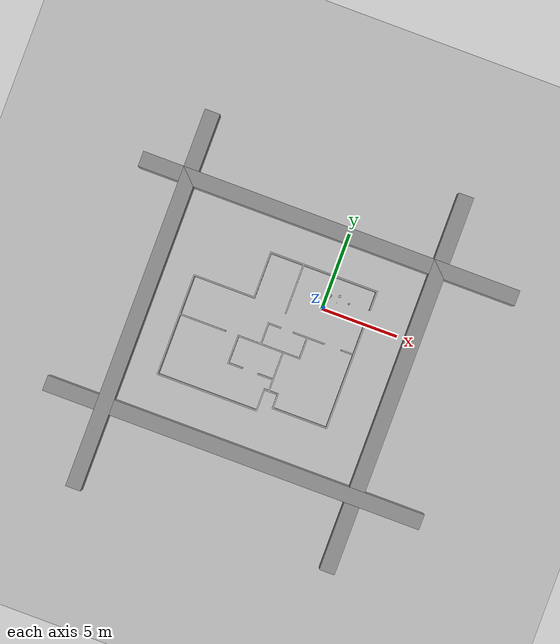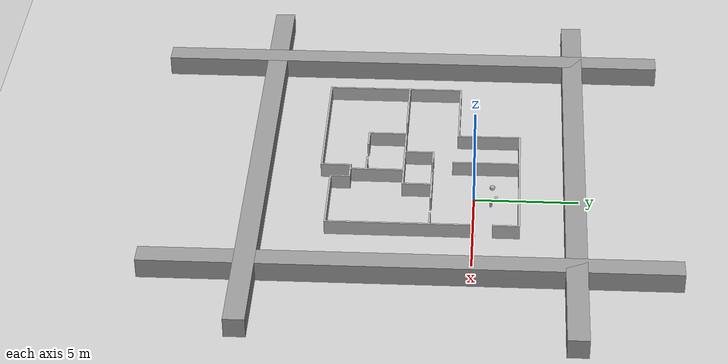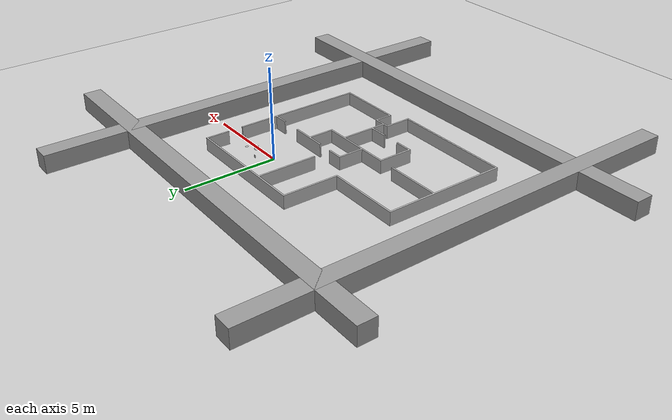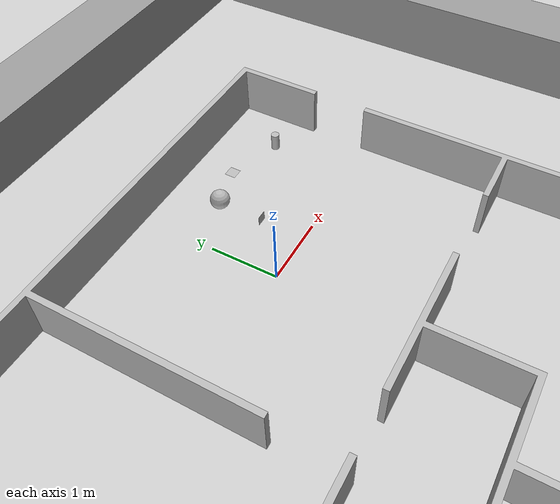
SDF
<sdf version="1.6">
 <world name="default">
  <light name="sun" type="directional">
   <pose>0 0 10 0 -0 0</pose>
   <diffuse>0.8 0.8 0.8 1</diffuse>
   <specular>0.2 0.2 0.2 1</specular>
   <attenuation>
    <range>1000</range>
    <constant>0.9</constant>
    <linear>0.01</linear>
    <quadratic>0.001</quadratic>
   </attenuation>
   <direction>-0.5 0.1 -0.9</direction>
  </light>
  <model name="ground_plane">
   <static>1</static>
   <link name="link">
    <collision name="collision">
     <geometry><plane><normal>0 0 1</normal><size>100 100</size></plane></geometry>
     <surface><friction><ode><mu>100</mu><mu2>50</mu2></ode></friction></surface>
    </collision>
    <visual name="visual">
     <cast_shadows>0</cast_shadows>
     <geometry><plane><normal>0 0 1</normal><size>100 100</size></plane></geometry>
     <material>
      <script><uri>file://media/materials/scripts/gazebo.material</uri><name>Gazebo/Grey</name></script>
     </material>
    </visual>
    <velocity_decay><linear>0</linear><angular>0</angular></velocity_decay>
   </link>
  </model>
  <physics name="default_physics" default="0" type="ode">
   <max_step_size>0.001</max_step_size>
   <real_time_factor>1</real_time_factor>
   <real_time_update_rate>1000</real_time_update_rate>
  </physics>
  <scene><ambient>0.4 0.4 0.4 1</ambient><background>0.7 0.7 0.7 1</background><shadows>1</shadows></scene>
  <spherical_coordinates>
   <surface_model>EARTH_WGS84</surface_model>
   <latitude_deg>0</latitude_deg>
   <longitude_deg>0</longitude_deg>
   <elevation>0</elevation>
   <heading_deg>0</heading_deg>
  </spherical_coordinates>
  <model name="iceira302">
   <link name="iceira302">
    <inertial>
     <pose>-0.51712 -1.0217 0.365 0 -0 0</pose>
     <mass>4047.1</mass>
     <inertia>
      <ixx>39193.3</ixx>
      <ixy>6157.57</ixy>
      <ixz>-3.10115e-12</ixz>
      <iyy>49928.6</iyy>
      <iyz>3.4948e-12</iyz>
      <izz>88762.4</izz>
     </inertia>
    </inertial>
    <collision name="iceira302_collision">
     <geometry><mesh><scale>1 1 1</scale><uri>model://meshes/iceira302.STL</uri></mesh></geometry>
    </collision>
    <visual name="iceira302_visual">
     <geometry><mesh><scale>1 1 1</scale><uri>model://meshes/iceira302.STL</uri></mesh></geometry>
    </visual>
    <velocity_decay><linear>0</linear><angular>0</angular></velocity_decay>
   </link>
   <pose>-2 -2 -3e-06 -1e-06 1e-06 0</pose>
   <static>0</static>
  </model>
  <gravity>0 0 -9.8</gravity>
  <magnetic_field>6e-06 2.3e-05 -4.2e-05</magnetic_field>
  <atmosphere type="adiabatic"/>
  <model name="unit_box_0">
   <static>1</static>
   <pose>-1.35814 4.79357 0.499995 1e-05 -0 0</pose>
   <link name="link">
    <inertial>
     <mass>1</mass>
     <inertia>
      <ixx>0.166667</ixx>
      <ixy>0</ixy>
      <ixz>0</ixz>
      <iyy>0.166667</iyy>
      <iyz>0</iyz>
      <izz>0.166667</izz>
     </inertia>
    </inertial>
    <collision name="collision"><geometry><box><size>25 1 1</size></box></geometry></collision>
    <visual name="visual">
     <geometry><box><size>25 1 1</size></box></geometry>
     <material>
      <script><name>Gazebo/Grey</name><uri>file://media/materials/scripts/gazebo.material</uri></script>
     </material>
    </visual>
   </link>
  </model>
  <model name="unit_box_1">
   <static>1</static>
   <pose>5.9512 -2.8089 0.499995 0 1e-05 0</pose>
   <link name="link">
    <inertial>
     <mass>1</mass>
     <inertia>
      <ixx>0.166667</ixx>
      <ixy>0</ixy>
      <ixz>0</ixz>
      <iyy>0.166667</iyy>
      <iyz>0</iyz>
      <izz>0.166667</izz>
     </inertia>
    </inertial>
    <collision name="collision"><geometry><box><size>1 25 1</size></box></geometry></collision>
    <visual name="visual">
     <geometry><box><size>1 25 1</size></box></geometry>
     <material>
      <script><name>Gazebo/Grey</name><uri>file://media/materials/scripts/gazebo.material</uri></script>
     </material>
    </visual>
   </link>
  </model>
  <model name="unit_box_2">
   <static>1</static>
   <pose>-2.09498 -10.3479 0.499995 0 -1e-05 0</pose>
   <link name="link">
    <inertial>
     <mass>1</mass>
     <inertia>
      <ixx>0.166667</ixx>
      <ixy>0</ixy>
      <ixz>0</ixz>
      <iyy>0.166667</iyy>
      <iyz>0</iyz>
      <izz>0.166667</izz>
     </inertia>
    </inertial>
    <collision name="collision"><geometry><box><size>25 1 1</size></box></geometry></collision>
    <visual name="visual">
     <geometry><box><size>25 1 1</size></box></geometry>
     <material>
      <script><name>Gazebo/Grey</name><uri>file://media/materials/scripts/gazebo.material</uri></script>
     </material>
    </visual>
   </link>
  </model>
  <model name="unit_box_3">
   <static>1</static>
   <pose>-10.6855 -3.41133 0.499995 0 1e-05 0</pose>
   <link name="link">
    <inertial>
     <mass>1</mass>
     <inertia>
      <ixx>0.166667</ixx>
      <ixy>0</ixy>
      <ixz>0</ixz>
      <iyy>0.166667</iyy>
      <iyz>0</iyz>
      <izz>0.166667</izz>
     </inertia>
    </inertial>
    <collision name="collision"><geometry><box><size>1 25 1</size></box></geometry></collision>
    <visual name="visual">
     <geometry><box><size>1 25 1</size></box></geometry>
     <material>
      <script><name>Gazebo/Grey</name><uri>file://media/materials/scripts/gazebo.material</uri></script>
     </material>
    </visual>
   </link>
  </model>
  <model name="beer">
   <link name="link">
    <inertial>
     <mass>0.39</mass>
     <inertia><ixx>0.00058</ixx><ixy>0</ixy><ixz>0</ixz><iyy>0.00058</iyy><iyz>0</iyz><izz>0.00019</izz></inertia>
    </inertial>
    <collision name="collision">
     <geometry><cylinder><radius>0.055</radius><length>0.23</length></cylinder></geometry>
    </collision>
    <visual name="visual">
     <geometry><cylinder><radius>0.055</radius><length>0.23</length></cylinder></geometry>
     <material>
      <script>
       <uri>model://beer/materials/scripts</uri>
       <uri>model://beer/materials/textures</uri>
       <name>Beer/Diffuse</name>
      </script>
     </material>
    </visual>
   </link>
   <pose>1.4477 0.818398 0.890002 3.9e-05 -1.3e-05 0.001753</pose>
  </model>
  <model name="artag_1">
   <static>1</static>
   <link name="link">
    <inertial>
     <mass>0.39</mass>
     <inertia><ixx>0.00058</ixx><ixy>0</ixy><ixz>0</ixz><iyy>0.00058</iyy><iyz>0</iyz><izz>0.00058</izz></inertia>
    </inertial>
    <collision name="collision"><geometry><box><size>0.15 1e-05 0.15</size></box></geometry></collision>
    <visual name="visual">
     <geometry><box><size>0.15 1e-05 0.15</size></box></geometry>
     <material>
      <script>
       <uri>model://models/artag/materials/scripts</uri>
       <uri>model://models/artag/materials/textures</uri>
       <name>Artag_01/Diffuse</name>
      </script>
     </material>
    </visual>
   </link>
   <pose>0.738141 0.65962 0.075 0 -0 0</pose>
  </model>
  <model name="artag_2">
   <static>1</static>
   <link name="link">
    <inertial>
     <mass>0.39</mass>
     <inertia><ixx>0.00058</ixx><ixy>0</ixy><ixz>0</ixz><iyy>0.00058</iyy><iyz>0</iyz><izz>0.00058</izz></inertia>
    </inertial>
    <collision name="collision"><geometry><box><size>0.15 0.15 1e-06</size></box></geometry></collision>
    <visual name="visual">
     <geometry><box><size>0.15 0.15 1e-06</size></box></geometry>
     <material>
      <script>
       <uri>model://models/artag/materials/scripts</uri>
       <uri>model://models/artag/materials/textures</uri>
       <name>Artag_02/Diffuse</name>
      </script>
     </material>
    </visual>
   </link>
   <pose>0.738141 1.07112 0.775001 0 -0 0</pose>
  </model>
  <model name="frc2016_ball">
   <pose>0.143492 0.877609 0.901614 0 -0 0</pose>
   <link name="link">
    <inertial>
     <mass>0.213</mass>
     <inertia>
      <ixx>0.00322667</ixx>
      <ixy>0</ixy>
      <ixz>0</ixz>
      <iyy>0.00322667</iyy>
      <iyz>0</iyz>
      <izz>0.00322667</izz>
     </inertia>
    </inertial>
    <visual name="visual"><geometry><sphere><radius>0.127</radius></sphere></geometry></visual>
    <collision name="collision">
     <geometry><sphere><radius>0.127</radius></sphere></geometry>
     <surface>
      <bounce><restitution_coefficient>0.15937</restitution_coefficient><threshold>0</threshold></bounce>
      <contact><ode><max_vel>100</max_vel><min_depth>0.001</min_depth></ode></contact>
     </surface>
    </collision>
   </link>
  </model>
 </world>
</sdf>
